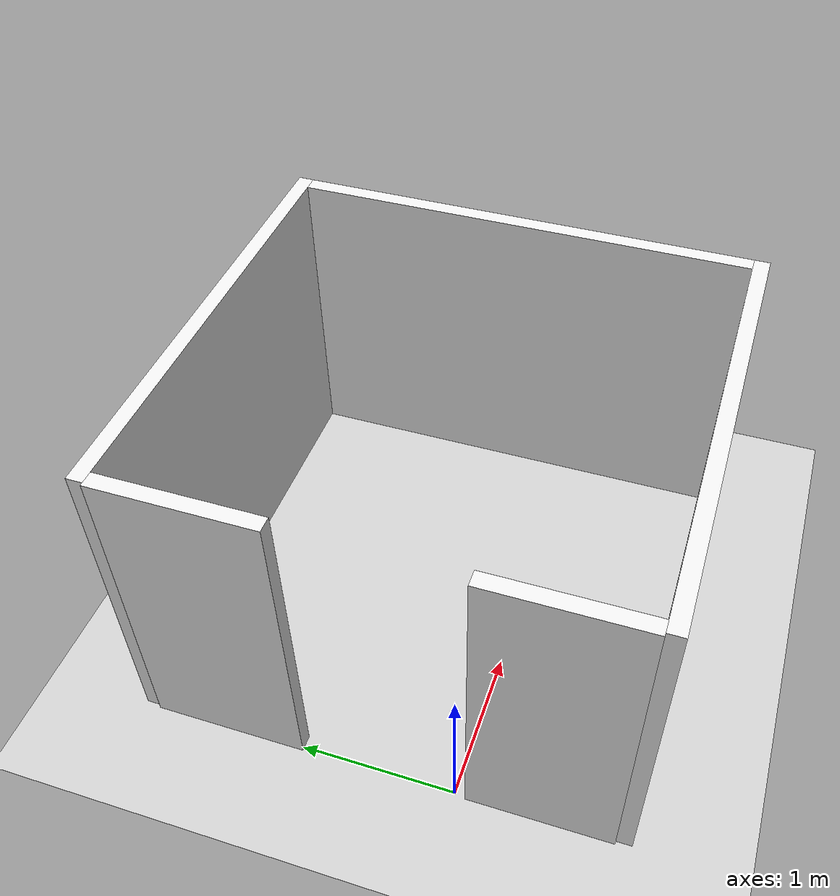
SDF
<sdf version="1.6">
 <world name="default">
  <model name="ground_plane">
   <static>1</static>
   <link name="link">
    <collision name="collision">
     <geometry><plane><normal>0 0 1</normal><size>100 100</size></plane></geometry>
     <surface><friction><ode><mu>100</mu><mu2>50</mu2></ode></friction></surface>
    </collision>
    <visual name="visual">
     <cast_shadows>0</cast_shadows>
     <geometry><plane><normal>0 0 1</normal><size>100 100</size></plane></geometry>
     <material>
      <script><uri>file://media/materials/scripts/gazebo.material</uri><name>Gazebo/Grey</name></script>
     </material>
    </visual>
   </link>
  </model>
  <light name="sun" type="directional">
   <pose>0 0 10 0 -0 0</pose>
   <diffuse>0.8 0.8 0.8 1</diffuse>
   <specular>0.2 0.2 0.2 1</specular>
   <attenuation>
    <range>1000</range>
    <constant>0.9</constant>
    <linear>0.01</linear>
    <quadratic>0.001</quadratic>
   </attenuation>
   <direction>-0.5 0.1 -0.9</direction>
  </light>
  <model name="walls">
   <static>1</static>
   <link name="wall_1">
    <collision name="wall_1_collision">
     <pose>0.03 1.49911 1.05342 0 -0 0</pose>
     <geometry><box><size>0.1 1.00178 2.10684</size></box></geometry>
    </collision>
    <visual name="wall_1_visual">
     <pose>0.03 1.49911 1.05342 0 -0 0</pose>
     <geometry><box><size>0.1 1.00178 2.10684</size></box></geometry>
     <material>
      <script><uri>file://media/materials/scripts/Gazebo.material</uri><name>Gazebo/White</name></script>
     </material>
    </visual>
   </link>
   <link name="wall_2">
    <collision name="wall_2_collision">
     <pose>0.03 -0.53429 1.05342 0 -0 0</pose>
     <geometry><box><size>0.1 0.93142 2.10684</size></box></geometry>
    </collision>
    <visual name="wall_2_visual">
     <pose>0.03 -0.53429 1.05342 0 -0 0</pose>
     <geometry><box><size>0.1 0.93142 2.10684</size></box></geometry>
     <material>
      <script><uri>file://media/materials/scripts/Gazebo.material</uri><name>Gazebo/White</name></script>
     </material>
    </visual>
   </link>
   <link name="wall_3">
    <collision name="wall_3_collision">
     <pose>1.5 2.05 1.05342 0 -0 0</pose>
     <geometry><box><size>3 0.1 2.10684</size></box></geometry>
    </collision>
    <visual name="wall_3_visual">
     <pose>1.5 2.05 1.05342 0 -0 0</pose>
     <geometry><box><size>3 0.1 2.10684</size></box></geometry>
     <material>
      <script><uri>file://media/materials/scripts/Gazebo.material</uri><name>Gazebo/White</name></script>
     </material>
    </visual>
   </link>
   <link name="wall_4">
    <collision name="wall_4_collision">
     <pose>1.5 -1.05 1.05342 0 -0 0</pose>
     <geometry><box><size>3 0.1 2.10684</size></box></geometry>
    </collision>
    <visual name="wall_4_visual">
     <pose>1.5 -1.05 1.05342 0 -0 0</pose>
     <geometry><box><size>3 0.1 2.10684</size></box></geometry>
     <material>
      <script><uri>file://media/materials/scripts/Gazebo.material</uri><name>Gazebo/White</name></script>
     </material>
    </visual>
   </link>
   <link name="wall_5">
    <collision name="wall_5_collision">
     <pose>2.95 0.5 1.05342 0 -0 0</pose>
     <geometry><box><size>0.1 3 2.10684</size></box></geometry>
    </collision>
    <visual name="wall_5_visual">
     <pose>2.95 0.5 1.05342 0 -0 0</pose>
     <geometry><box><size>0.1 3 2.10684</size></box></geometry>
     <material>
      <script><uri>file://media/materials/scripts/Gazebo.material</uri><name>Gazebo/White</name></script>
     </material>
    </visual>
   </link>
  </model>
  <gravity>0 0 -9.8</gravity>
  <magnetic_field>6e-06 2.3e-05 -4.2e-05</magnetic_field>
  <atmosphere type="adiabatic"/>
  <physics name="default_physics" default="0" type="ode">
   <max_step_size>0.001</max_step_size>
   <real_time_factor>1</real_time_factor>
   <real_time_update_rate>1000</real_time_update_rate>
  </physics>
  <scene><ambient>0.4 0.4 0.4 1</ambient><background>0.7 0.7 0.7 1</background><shadows>1</shadows></scene>
  <audio><device>default</device></audio>
  <spherical_coordinates>
   <surface_model>EARTH_WGS84</surface_model>
   <latitude_deg>0</latitude_deg>
   <longitude_deg>0</longitude_deg>
   <elevation>0</elevation>
   <heading_deg>0</heading_deg>
  </spherical_coordinates>
 </world>
</sdf>
